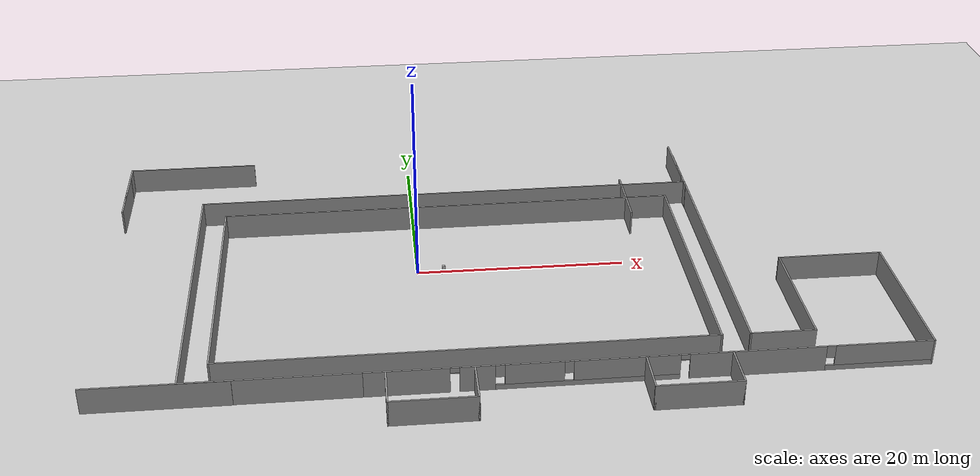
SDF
<sdf version="1.6">
 <world name="default">
  <light name="sun" type="directional">
   <pose>0 0 10 0 -0 0</pose>
   <diffuse>0.8 0.8 0.8 1</diffuse>
   <specular>0.2 0.2 0.2 1</specular>
   <attenuation>
    <range>1000</range>
    <constant>0.9</constant>
    <linear>0.01</linear>
    <quadratic>0.001</quadratic>
   </attenuation>
   <direction>-0.5 0.1 -0.9</direction>
  </light>
  <model name="ground_plane">
   <static>1</static>
   <link name="link">
    <collision name="collision">
     <geometry><plane><normal>0 0 1</normal><size>100 100</size></plane></geometry>
     <surface>
      <contact><collide_bitmask>65535</collide_bitmask></contact>
      <friction><ode><mu>100</mu><mu2>50</mu2></ode></friction>
     </surface>
    </collision>
    <visual name="visual">
     <cast_shadows>0</cast_shadows>
     <geometry><plane><normal>0 0 1</normal><size>100 100</size></plane></geometry>
     <material>
      <script><uri>file://media/materials/scripts/gazebo.material</uri><name>Gazebo/Grey</name></script>
     </material>
    </visual>
   </link>
  </model>
  <gravity>0 0 -9.8</gravity>
  <magnetic_field>6e-06 2.3e-05 -4.2e-05</magnetic_field>
  <atmosphere type="adiabatic"/>
  <physics name="default_physics" default="0" type="ode">
   <max_step_size>0.001</max_step_size>
   <real_time_factor>1</real_time_factor>
   <real_time_update_rate>1000</real_time_update_rate>
  </physics>
  <scene><ambient>0.4 0.4 0.4 1</ambient><background>0.7 0.7 0.7 1</background><shadows>1</shadows></scene>
  <spherical_coordinates>
   <surface_model>EARTH_WGS84</surface_model>
   <latitude_deg>0</latitude_deg>
   <longitude_deg>0</longitude_deg>
   <elevation>0</elevation>
   <heading_deg>0</heading_deg>
  </spherical_coordinates>
  <model name="my_worlds">
   <link name="myworld::myworld::Wall_0">
    <pose>7.725 -15.35 0 0 -0 0</pose>
    <visual name="Wall_0_Visual_6">
     <pose>-2.17588 0 1.5 0 -0 0</pose>
     <geometry><box><size>9.2769 0.15 2</size></box></geometry>
     <material>
      <script><uri>file://media/materials/scripts/gazebo.material</uri><name>Gazebo/Grey</name></script>
      <ambient>1 1 1 1</ambient>
      <shader type="pixel"/>
     </material>
     <meta><layer>0</layer></meta>
    </visual>
    <visual name="Wall_0_Visual_0">
     <pose>-21.2249 0 1.25 0 -0 0</pose>
     <geometry><box><size>7.55013 0.15 2.5</size></box></geometry>
     <material>
      <script><uri>file://media/materials/scripts/gazebo.material</uri><name>Gazebo/Grey</name></script>
      <ambient>1 1 1 1</ambient>
      <shader type="pixel"/>
     </material>
     <meta><layer>0</layer></meta>
    </visual>
    <visual name="Wall_0_Visual_14">
     <pose>2.86257 0 2.25 0 -0 0</pose>
     <geometry><box><size>0.8 0.15 0.5</size></box></geometry>
     <material>
      <script><uri>file://media/materials/scripts/gazebo.material</uri><name>Gazebo/Grey</name></script>
      <ambient>1 1 1 1</ambient>
      <shader type="pixel"/>
     </material>
     <meta><layer>0</layer></meta>
    </visual>
    <visual name="Wall_0_Visual_8">
     <pose>20.5547 0 1.5 0 -0 0</pose>
     <geometry><box><size>8.89059 0.15 2</size></box></geometry>
     <material>
      <script><uri>file://media/materials/scripts/gazebo.material</uri><name>Gazebo/Grey</name></script>
      <ambient>1 1 1 1</ambient>
      <shader type="pixel"/>
     </material>
     <meta><layer>0</layer></meta>
    </visual>
    <visual name="Wall_0_Visual_2">
     <pose>9.28599 0 1.25 0 -0 0</pose>
     <geometry><box><size>12.0468 0.15 2.5</size></box></geometry>
     <material>
      <script><uri>file://media/materials/scripts/gazebo.material</uri><name>Gazebo/Grey</name></script>
      <ambient>1 1 1 1</ambient>
      <shader type="pixel"/>
     </material>
     <meta><layer>0</layer></meta>
    </visual>
    <visual name="Wall_0_Visual_1">
     <pose>-15.1089 0 1.25 0 -0 0</pose>
     <geometry><box><size>3.08192 0.15 2.5</size></box></geometry>
     <material>
      <script><uri>file://media/materials/scripts/gazebo.material</uri><name>Gazebo/Grey</name></script>
      <ambient>1 1 1 1</ambient>
      <shader type="pixel"/>
     </material>
     <meta><layer>0</layer></meta>
    </visual>
    <visual name="Wall_0_Visual_3">
     <pose>-5.55269 0 0.25 0 -0 0</pose>
     <geometry><box><size>16.0305 0.15 0.5</size></box></geometry>
     <material>
      <script><uri>file://media/materials/scripts/gazebo.material</uri><name>Gazebo/Grey</name></script>
      <ambient>1 1 1 1</ambient>
      <shader type="pixel"/>
     </material>
     <meta><layer>0</layer></meta>
    </visual>
    <visual name="Wall_0_Visual_5">
     <pose>-10.1911 0 1.5 0 -0 0</pose>
     <geometry><box><size>5.15362 0.15 2</size></box></geometry>
     <material>
      <script><uri>file://media/materials/scripts/gazebo.material</uri><name>Gazebo/Grey</name></script>
      <ambient>1 1 1 1</ambient>
      <shader type="pixel"/>
     </material>
     <meta><layer>0</layer></meta>
    </visual>
    <visual name="Wall_0_Visual_13">
     <pose>2.86257 0 2.25 0 -0 0</pose>
     <geometry><box><size>0.8 0.15 0.5</size></box></geometry>
     <material>
      <script><uri>file://media/materials/scripts/gazebo.material</uri><name>Gazebo/Grey</name></script>
      <ambient>1 1 1 1</ambient>
      <shader type="pixel"/>
     </material>
     <meta><layer>0</layer></meta>
    </visual>
    <visual name="Wall_0_Visual_4">
     <pose>20.1547 0 0.25 0 -0 0</pose>
     <geometry><box><size>9.69059 0.15 0.5</size></box></geometry>
     <material>
      <script><uri>file://media/materials/scripts/gazebo.material</uri><name>Gazebo/Grey</name></script>
      <ambient>1 1 1 1</ambient>
      <shader type="pixel"/>
     </material>
     <meta><layer>0</layer></meta>
    </visual>
    <visual name="Wall_0_Visual_9">
     <pose>-13.1679 0 1.9 0 -0 0</pose>
     <geometry><box><size>0.8 0.15 1.2</size></box></geometry>
     <material>
      <script><uri>file://media/materials/scripts/gazebo.material</uri><name>Gazebo/Grey</name></script>
      <ambient>1 1 1 1</ambient>
      <shader type="pixel"/>
     </material>
     <meta><layer>0</layer></meta>
    </visual>
    <visual name="Wall_0_Visual_10">
     <pose>15.7094 0 1.9 0 -0 0</pose>
     <geometry><box><size>0.8 0.15 1.2</size></box></geometry>
     <material>
      <script><uri>file://media/materials/scripts/gazebo.material</uri><name>Gazebo/Grey</name></script>
      <ambient>1 1 1 1</ambient>
      <shader type="pixel"/>
     </material>
     <meta><layer>0</layer></meta>
    </visual>
    <visual name="Wall_0_Visual_11">
     <pose>-7.21433 0 1.9 0 -0 0</pose>
     <geometry><box><size>0.8 0.15 1.2</size></box></geometry>
     <material>
      <script><uri>file://media/materials/scripts/gazebo.material</uri><name>Gazebo/Grey</name></script>
      <ambient>1 1 1 1</ambient>
      <shader type="pixel"/>
     </material>
     <meta><layer>0</layer></meta>
    </visual>
    <visual name="Wall_0_Visual_12">
     <pose>-17.0499 0 2.25 0 -0 0</pose>
     <geometry><box><size>0.8 0.15 0.5</size></box></geometry>
     <material>
      <script><uri>file://media/materials/scripts/gazebo.material</uri><name>Gazebo/Grey</name></script>
      <ambient>1 1 1 1</ambient>
      <shader type="pixel"/>
     </material>
     <meta><layer>0</layer></meta>
    </visual>
    <visual name="Wall_0_Visual_7">
     <pose>-2.17588 0 1.5 0 -0 0</pose>
     <geometry><box><size>9.2769 0.15 2</size></box></geometry>
     <material>
      <script><uri>file://media/materials/scripts/gazebo.material</uri><name>Gazebo/Grey</name></script>
      <ambient>1 1 1 1</ambient>
      <shader type="pixel"/>
     </material>
     <meta><layer>0</layer></meta>
    </visual>
    <collision name="Wall_0_Collision_7">
     <pose>-2.17588 0 1.5 0 -0 0</pose>
     <geometry><box><size>9.2769 0.15 2</size></box></geometry>
     <surface>
      <friction>
       <ode><mu>1</mu><mu2>1</mu2><fdir1>0 0 0</fdir1><slip1>0</slip1><slip2>0</slip2></ode>
       <torsional>
        <coefficient>1</coefficient>
        <patch_radius>0</patch_radius>
        <surface_radius>0</surface_radius>
        <use_patch_radius>1</use_patch_radius>
        <ode><slip>0</slip></ode>
       </torsional>
      </friction>
      <bounce><restitution_coefficient>0</restitution_coefficient><threshold>1e+06</threshold></bounce>
      <contact>
       <collide_without_contact>0</collide_without_contact>
       <collide_without_contact_bitmask>1</collide_without_contact_bitmask>
       <collide_bitmask>1</collide_bitmask>
       <ode>
        <soft_cfm>0</soft_cfm>
        <soft_erp>0.2</soft_erp>
        <kp>1e+13</kp>
        <kd>1</kd>
        <max_vel>0.01</max_vel>
        <min_depth>0</min_depth>
       </ode>
       <bullet>
        <split_impulse>1</split_impulse>
        <split_impulse_penetration_threshold>-0.01</split_impulse_penetration_threshold>
        <soft_cfm>0</soft_cfm>
        <soft_erp>0.2</soft_erp>
        <kp>1e+13</kp>
        <kd>1</kd>
       </bullet>
      </contact>
     </surface>
    </collision>
    <collision name="Wall_0_Collision_13">
     <pose>2.86257 0 2.25 0 -0 0</pose>
     <geometry><box><size>0.8 0.15 0.5</size></box></geometry>
     <surface>
      <friction>
       <ode><mu>1</mu><mu2>1</mu2><fdir1>0 0 0</fdir1><slip1>0</slip1><slip2>0</slip2></ode>
       <torsional>
        <coefficient>1</coefficient>
        <patch_radius>0</patch_radius>
        <surface_radius>0</surface_radius>
        <use_patch_radius>1</use_patch_radius>
        <ode><slip>0</slip></ode>
       </torsional>
      </friction>
      <bounce><restitution_coefficient>0</restitution_coefficient><threshold>1e+06</threshold></bounce>
      <contact>
       <collide_without_contact>0</collide_without_contact>
       <collide_without_contact_bitmask>1</collide_without_contact_bitmask>
       <collide_bitmask>1</collide_bitmask>
       <ode>
        <soft_cfm>0</soft_cfm>
        <soft_erp>0.2</soft_erp>
        <kp>1e+13</kp>
        <kd>1</kd>
        <max_vel>0.01</max_vel>
        <min_depth>0</min_depth>
       </ode>
       <bullet>
        <split_impulse>1</split_impulse>
        <split_impulse_penetration_threshold>-0.01</split_impulse_penetration_threshold>
        <soft_cfm>0</soft_cfm>
        <soft_erp>0.2</soft_erp>
        <kp>1e+13</kp>
        <kd>1</kd>
       </bullet>
      </contact>
     </surface>
    </collision>
    <collision name="Wall_0_Collision_1">
     <pose>-15.1089 0 1.25 0 -0 0</pose>
     <geometry><box><size>3.08192 0.15 2.5</size></box></geometry>
     <surface>
      <friction>
       <ode><mu>1</mu><mu2>1</mu2><fdir1>0 0 0</fdir1><slip1>0</slip1><slip2>0</slip2></ode>
       <torsional>
        <coefficient>1</coefficient>
        <patch_radius>0</patch_radius>
        <surface_radius>0</surface_radius>
        <use_patch_radius>1</use_patch_radius>
        <ode><slip>0</slip></ode>
       </torsional>
      </friction>
      <bounce><restitution_coefficient>0</restitution_coefficient><threshold>1e+06</threshold></bounce>
      <contact>
       <collide_without_contact>0</collide_without_contact>
       <collide_without_contact_bitmask>1</collide_without_contact_bitmask>
       <collide_bitmask>1</collide_bitmask>
       <ode>
        <soft_cfm>0</soft_cfm>
        <soft_erp>0.2</soft_erp>
        <kp>1e+13</kp>
        <kd>1</kd>
        <max_vel>0.01</max_vel>
        <min_depth>0</min_depth>
       </ode>
       <bullet>
        <split_impulse>1</split_impulse>
        <split_impulse_penetration_threshold>-0.01</split_impulse_penetration_threshold>
        <soft_cfm>0</soft_cfm>
        <soft_erp>0.2</soft_erp>
        <kp>1e+13</kp>
        <kd>1</kd>
       </bullet>
      </contact>
     </surface>
    </collision>
    <collision name="Wall_0_Collision_11">
     <pose>-7.21433 0 1.9 0 -0 0</pose>
     <geometry><box><size>0.8 0.15 1.2</size></box></geometry>
     <surface>
      <friction>
       <ode><mu>1</mu><mu2>1</mu2><fdir1>0 0 0</fdir1><slip1>0</slip1><slip2>0</slip2></ode>
       <torsional>
        <coefficient>1</coefficient>
        <patch_radius>0</patch_radius>
        <surface_radius>0</surface_radius>
        <use_patch_radius>1</use_patch_radius>
        <ode><slip>0</slip></ode>
       </torsional>
      </friction>
      <bounce><restitution_coefficient>0</restitution_coefficient><threshold>1e+06</threshold></bounce>
      <contact>
       <collide_without_contact>0</collide_without_contact>
       <collide_without_contact_bitmask>1</collide_without_contact_bitmask>
       <collide_bitmask>1</collide_bitmask>
       <ode>
        <soft_cfm>0</soft_cfm>
        <soft_erp>0.2</soft_erp>
        <kp>1e+13</kp>
        <kd>1</kd>
        <max_vel>0.01</max_vel>
        <min_depth>0</min_depth>
       </ode>
       <bullet>
        <split_impulse>1</split_impulse>
        <split_impulse_penetration_threshold>-0.01</split_impulse_penetration_threshold>
        <soft_cfm>0</soft_cfm>
        <soft_erp>0.2</soft_erp>
        <kp>1e+13</kp>
        <kd>1</kd>
       </bullet>
      </contact>
     </surface>
    </collision>
    <collision name="Wall_0_Collision_14">
     <pose>2.86257 0 2.25 0 -0 0</pose>
     <geometry><box><size>0.8 0.15 0.5</size></box></geometry>
     <surface>
      <friction>
       <ode><mu>1</mu><mu2>1</mu2><fdir1>0 0 0</fdir1><slip1>0</slip1><slip2>0</slip2></ode>
       <torsional>
        <coefficient>1</coefficient>
        <patch_radius>0</patch_radius>
        <surface_radius>0</surface_radius>
        <use_patch_radius>1</use_patch_radius>
        <ode><slip>0</slip></ode>
       </torsional>
      </friction>
      <bounce><restitution_coefficient>0</restitution_coefficient><threshold>1e+06</threshold></bounce>
      <contact>
       <collide_without_contact>0</collide_without_contact>
       <collide_without_contact_bitmask>1</collide_without_contact_bitmask>
       <collide_bitmask>1</collide_bitmask>
       <ode>
        <soft_cfm>0</soft_cfm>
        <soft_erp>0.2</soft_erp>
        <kp>1e+13</kp>
        <kd>1</kd>
        <max_vel>0.01</max_vel>
        <min_depth>0</min_depth>
       </ode>
       <bullet>
        <split_impulse>1</split_impulse>
        <split_impulse_penetration_threshold>-0.01</split_impulse_penetration_threshold>
        <soft_cfm>0</soft_cfm>
        <soft_erp>0.2</soft_erp>
        <kp>1e+13</kp>
        <kd>1</kd>
       </bullet>
      </contact>
     </surface>
    </collision>
    <collision name="Wall_0_Collision_3">
     <pose>-5.55269 0 0.25 0 -0 0</pose>
     <geometry><box><size>16.0305 0.15 0.5</size></box></geometry>
     <surface>
      <friction>
       <ode><mu>1</mu><mu2>1</mu2><fdir1>0 0 0</fdir1><slip1>0</slip1><slip2>0</slip2></ode>
       <torsional>
        <coefficient>1</coefficient>
        <patch_radius>0</patch_radius>
        <surface_radius>0</surface_radius>
        <use_patch_radius>1</use_patch_radius>
        <ode><slip>0</slip></ode>
       </torsional>
      </friction>
      <bounce><restitution_coefficient>0</restitution_coefficient><threshold>1e+06</threshold></bounce>
      <contact>
       <collide_without_contact>0</collide_without_contact>
       <collide_without_contact_bitmask>1</collide_without_contact_bitmask>
       <collide_bitmask>1</collide_bitmask>
       <ode>
        <soft_cfm>0</soft_cfm>
        <soft_erp>0.2</soft_erp>
        <kp>1e+13</kp>
        <kd>1</kd>
        <max_vel>0.01</max_vel>
        <min_depth>0</min_depth>
       </ode>
       <bullet>
        <split_impulse>1</split_impulse>
        <split_impulse_penetration_threshold>-0.01</split_impulse_penetration_threshold>
        <soft_cfm>0</soft_cfm>
        <soft_erp>0.2</soft_erp>
        <kp>1e+13</kp>
        <kd>1</kd>
       </bullet>
      </contact>
     </surface>
    </collision>
    <collision name="Wall_0_Collision_5">
     <pose>-10.1911 0 1.5 0 -0 0</pose>
     <geometry><box><size>5.15362 0.15 2</size></box></geometry>
     <surface>
      <friction>
       <ode><mu>1</mu><mu2>1</mu2><fdir1>0 0 0</fdir1><slip1>0</slip1><slip2>0</slip2></ode>
       <torsional>
        <coefficient>1</coefficient>
        <patch_radius>0</patch_radius>
        <surface_radius>0</surface_radius>
        <use_patch_radius>1</use_patch_radius>
        <ode><slip>0</slip></ode>
       </torsional>
      </friction>
      <bounce><restitution_coefficient>0</restitution_coefficient><threshold>1e+06</threshold></bounce>
      <contact>
       <collide_without_contact>0</collide_without_contact>
       <collide_without_contact_bitmask>1</collide_without_contact_bitmask>
       <collide_bitmask>1</collide_bitmask>
       <ode>
        <soft_cfm>0</soft_cfm>
        <soft_erp>0.2</soft_erp>
        <kp>1e+13</kp>
        <kd>1</kd>
        <max_vel>0.01</max_vel>
        <min_depth>0</min_depth>
       </ode>
       <bullet>
        <split_impulse>1</split_impulse>
        <split_impulse_penetration_threshold>-0.01</split_impulse_penetration_threshold>
        <soft_cfm>0</soft_cfm>
        <soft_erp>0.2</soft_erp>
        <kp>1e+13</kp>
        <kd>1</kd>
       </bullet>
      </contact>
     </surface>
    </collision>
    <collision name="Wall_0_Collision_2">
     <pose>9.28599 0 1.25 0 -0 0</pose>
     <geometry><box><size>12.0468 0.15 2.5</size></box></geometry>
     <surface>
      <friction>
       <ode><mu>1</mu><mu2>1</mu2><fdir1>0 0 0</fdir1><slip1>0</slip1><slip2>0</slip2></ode>
       <torsional>
        <coefficient>1</coefficient>
        <patch_radius>0</patch_radius>
        <surface_radius>0</surface_radius>
        <use_patch_radius>1</use_patch_radius>
        <ode><slip>0</slip></ode>
       </torsional>
      </friction>
      <bounce><restitution_coefficient>0</restitution_coefficient><threshold>1e+06</threshold></bounce>
      <contact>
       <collide_without_contact>0</collide_without_contact>
       <collide_without_contact_bitmask>1</collide_without_contact_bitmask>
       <collide_bitmask>1</collide_bitmask>
       <ode>
        <soft_cfm>0</soft_cfm>
        <soft_erp>0.2</soft_erp>
        <kp>1e+13</kp>
        <kd>1</kd>
        <max_vel>0.01</max_vel>
        <min_depth>0</min_depth>
       </ode>
       <bullet>
        <split_impulse>1</split_impulse>
        <split_impulse_penetration_threshold>-0.01</split_impulse_penetration_threshold>
        <soft_cfm>0</soft_cfm>
        <soft_erp>0.2</soft_erp>
        <kp>1e+13</kp>
        <kd>1</kd>
       </bullet>
      </contact>
     </surface>
    </collision>
    <collision name="Wall_0_Collision_6">
     <pose>-2.17588 0 1.5 0 -0 0</pose>
     <geometry><box><size>9.2769 0.15 2</size></box></geometry>
     <surface>
      <friction>
       <ode><mu>1</mu><mu2>1</mu2><fdir1>0 0 0</fdir1><slip1>0</slip1><slip2>0</slip2></ode>
       <torsional>
        <coefficient>1</coefficient>
        <patch_radius>0</patch_radius>
        <surface_radius>0</surface_radius>
        <use_patch_radius>1</use_patch_radius>
        <ode><slip>0</slip></ode>
       </torsional>
      </friction>
      <bounce><restitution_coefficient>0</restitution_coefficient><threshold>1e+06</threshold></bounce>
      <contact>
       <collide_without_contact>0</collide_without_contact>
       <collide_without_contact_bitmask>1</collide_without_contact_bitmask>
       <collide_bitmask>1</collide_bitmask>
       <ode>
        <soft_cfm>0</soft_cfm>
        <soft_erp>0.2</soft_erp>
        <kp>1e+13</kp>
        <kd>1</kd>
        <max_vel>0.01</max_vel>
        <min_depth>0</min_depth>
       </ode>
       <bullet>
        <split_impulse>1</split_impulse>
        <split_impulse_penetration_threshold>-0.01</split_impulse_penetration_threshold>
        <soft_cfm>0</soft_cfm>
        <soft_erp>0.2</soft_erp>
        <kp>1e+13</kp>
        <kd>1</kd>
       </bullet>
      </contact>
     </surface>
    </collision>
    <collision name="Wall_0_Collision_12">
     <pose>-17.0499 0 2.25 0 -0 0</pose>
     <geometry><box><size>0.8 0.15 0.5</size></box></geometry>
     <surface>
      <friction>
       <ode><mu>1</mu><mu2>1</mu2><fdir1>0 0 0</fdir1><slip1>0</slip1><slip2>0</slip2></ode>
       <torsional>
        <coefficient>1</coefficient>
        <patch_radius>0</patch_radius>
        <surface_radius>0</surface_radius>
        <use_patch_radius>1</use_patch_radius>
        <ode><slip>0</slip></ode>
       </torsional>
      </friction>
      <bounce><restitution_coefficient>0</restitution_coefficient><threshold>1e+06</threshold></bounce>
      <contact>
       <collide_without_contact>0</collide_without_contact>
       <collide_without_contact_bitmask>1</collide_without_contact_bitmask>
       <collide_bitmask>1</collide_bitmask>
       <ode>
        <soft_cfm>0</soft_cfm>
        <soft_erp>0.2</soft_erp>
        <kp>1e+13</kp>
        <kd>1</kd>
        <max_vel>0.01</max_vel>
        <min_depth>0</min_depth>
       </ode>
       <bullet>
        <split_impulse>1</split_impulse>
        <split_impulse_penetration_threshold>-0.01</split_impulse_penetration_threshold>
        <soft_cfm>0</soft_cfm>
        <soft_erp>0.2</soft_erp>
        <kp>1e+13</kp>
        <kd>1</kd>
       </bullet>
      </contact>
     </surface>
    </collision>
    <collision name="Wall_0_Collision_0">
     <pose>-21.2249 0 1.25 0 -0 0</pose>
     <geometry><box><size>7.55013 0.15 2.5</size></box></geometry>
     <surface>
      <friction>
       <ode><mu>1</mu><mu2>1</mu2><fdir1>0 0 0</fdir1><slip1>0</slip1><slip2>0</slip2></ode>
       <torsional>
        <coefficient>1</coefficient>
        <patch_radius>0</patch_radius>
        <surface_radius>0</surface_radius>
        <use_patch_radius>1</use_patch_radius>
        <ode><slip>0</slip></ode>
       </torsional>
      </friction>
      <bounce><restitution_coefficient>0</restitution_coefficient><threshold>1e+06</threshold></bounce>
      <contact>
       <collide_without_contact>0</collide_without_contact>
       <collide_without_contact_bitmask>1</collide_without_contact_bitmask>
       <collide_bitmask>1</collide_bitmask>
       <ode>
        <soft_cfm>0</soft_cfm>
        <soft_erp>0.2</soft_erp>
        <kp>1e+13</kp>
        <kd>1</kd>
        <max_vel>0.01</max_vel>
        <min_depth>0</min_depth>
       </ode>
       <bullet>
        <split_impulse>1</split_impulse>
        <split_impulse_penetration_threshold>-0.01</split_impulse_penetration_threshold>
        <soft_cfm>0</soft_cfm>
        <soft_erp>0.2</soft_erp>
        <kp>1e+13</kp>
        <kd>1</kd>
       </bullet>
      </contact>
     </surface>
    </collision>
    <collision name="Wall_0_Collision_8">
     <pose>20.5547 0 1.5 0 -0 0</pose>
     <geometry><box><size>8.89059 0.15 2</size></box></geometry>
     <surface>
      <friction>
       <ode><mu>1</mu><mu2>1</mu2><fdir1>0 0 0</fdir1><slip1>0</slip1><slip2>0</slip2></ode>
       <torsional>
        <coefficient>1</coefficient>
        <patch_radius>0</patch_radius>
        <surface_radius>0</surface_radius>
        <use_patch_radius>1</use_patch_radius>
        <ode><slip>0</slip></ode>
       </torsional>
      </friction>
      <bounce><restitution_coefficient>0</restitution_coefficient><threshold>1e+06</threshold></bounce>
      <contact>
       <collide_without_contact>0</collide_without_contact>
       <collide_without_contact_bitmask>1</collide_without_contact_bitmask>
       <collide_bitmask>1</collide_bitmask>
       <ode>
        <soft_cfm>0</soft_cfm>
        <soft_erp>0.2</soft_erp>
        <kp>1e+13</kp>
        <kd>1</kd>
        <max_vel>0.01</max_vel>
        <min_depth>0</min_depth>
       </ode>
       <bullet>
        <split_impulse>1</split_impulse>
        <split_impulse_penetration_threshold>-0.01</split_impulse_penetration_threshold>
        <soft_cfm>0</soft_cfm>
        <soft_erp>0.2</soft_erp>
        <kp>1e+13</kp>
        <kd>1</kd>
       </bullet>
      </contact>
     </surface>
    </collision>
    <collision name="Wall_0_Collision_4">
     <pose>20.1547 0 0.25 0 -0 0</pose>
     <geometry><box><size>9.69059 0.15 0.5</size></box></geometry>
     <surface>
      <friction>
       <ode><mu>1</mu><mu2>1</mu2><fdir1>0 0 0</fdir1><slip1>0</slip1><slip2>0</slip2></ode>
       <torsional>
        <coefficient>1</coefficient>
        <patch_radius>0</patch_radius>
        <surface_radius>0</surface_radius>
        <use_patch_radius>1</use_patch_radius>
        <ode><slip>0</slip></ode>
       </torsional>
      </friction>
      <bounce><restitution_coefficient>0</restitution_coefficient><threshold>1e+06</threshold></bounce>
      <contact>
       <collide_without_contact>0</collide_without_contact>
       <collide_without_contact_bitmask>1</collide_without_contact_bitmask>
       <collide_bitmask>1</collide_bitmask>
       <ode>
        <soft_cfm>0</soft_cfm>
        <soft_erp>0.2</soft_erp>
        <kp>1e+13</kp>
        <kd>1</kd>
        <max_vel>0.01</max_vel>
        <min_depth>0</min_depth>
       </ode>
       <bullet>
        <split_impulse>1</split_impulse>
        <split_impulse_penetration_threshold>-0.01</split_impulse_penetration_threshold>
        <soft_cfm>0</soft_cfm>
        <soft_erp>0.2</soft_erp>
        <kp>1e+13</kp>
        <kd>1</kd>
       </bullet>
      </contact>
     </surface>
    </collision>
    <collision name="Wall_0_Collision_10">
     <pose>15.7094 0 1.9 0 -0 0</pose>
     <geometry><box><size>0.8 0.15 1.2</size></box></geometry>
     <surface>
      <friction>
       <ode><mu>1</mu><mu2>1</mu2><fdir1>0 0 0</fdir1><slip1>0</slip1><slip2>0</slip2></ode>
       <torsional>
        <coefficient>1</coefficient>
        <patch_radius>0</patch_radius>
        <surface_radius>0</surface_radius>
        <use_patch_radius>1</use_patch_radius>
        <ode><slip>0</slip></ode>
       </torsional>
      </friction>
      <bounce><restitution_coefficient>0</restitution_coefficient><threshold>1e+06</threshold></bounce>
      <contact>
       <collide_without_contact>0</collide_without_contact>
       <collide_without_contact_bitmask>1</collide_without_contact_bitmask>
       <collide_bitmask>1</collide_bitmask>
       <ode>
        <soft_cfm>0</soft_cfm>
        <soft_erp>0.2</soft_erp>
        <kp>1e+13</kp>
        <kd>1</kd>
        <max_vel>0.01</max_vel>
        <min_depth>0</min_depth>
       </ode>
       <bullet>
        <split_impulse>1</split_impulse>
        <split_impulse_penetration_threshold>-0.01</split_impulse_penetration_threshold>
        <soft_cfm>0</soft_cfm>
        <soft_erp>0.2</soft_erp>
        <kp>1e+13</kp>
        <kd>1</kd>
       </bullet>
      </contact>
     </surface>
    </collision>
    <collision name="Wall_0_Collision_9">
     <pose>-13.1679 0 1.9 0 -0 0</pose>
     <geometry><box><size>0.8 0.15 1.2</size></box></geometry>
     <surface>
      <friction>
       <ode><mu>1</mu><mu2>1</mu2><fdir1>0 0 0</fdir1><slip1>0</slip1><slip2>0</slip2></ode>
       <torsional>
        <coefficient>1</coefficient>
        <patch_radius>0</patch_radius>
        <surface_radius>0</surface_radius>
        <use_patch_radius>1</use_patch_radius>
        <ode><slip>0</slip></ode>
       </torsional>
      </friction>
      <bounce><restitution_coefficient>0</restitution_coefficient><threshold>1e+06</threshold></bounce>
      <contact>
       <collide_without_contact>0</collide_without_contact>
       <collide_without_contact_bitmask>1</collide_without_contact_bitmask>
       <collide_bitmask>1</collide_bitmask>
       <ode>
        <soft_cfm>0</soft_cfm>
        <soft_erp>0.2</soft_erp>
        <kp>1e+13</kp>
        <kd>1</kd>
        <max_vel>0.01</max_vel>
        <min_depth>0</min_depth>
       </ode>
       <bullet>
        <split_impulse>1</split_impulse>
        <split_impulse_penetration_threshold>-0.01</split_impulse_penetration_threshold>
        <soft_cfm>0</soft_cfm>
        <soft_erp>0.2</soft_erp>
        <kp>1e+13</kp>
        <kd>1</kd>
       </bullet>
      </contact>
     </surface>
    </collision>
   </link>
   <link name="myworld::myworld::Wall_11">
    <pose>19.875 -12.75 0 0 -0 3.14159</pose>
    <visual name="Wall_11_Visual">
     <pose>0 0 1.25 0 -0 0</pose>
     <geometry><box><size>6 0.15 2.5</size></box></geometry>
     <material>
      <script><uri>file://media/materials/scripts/gazebo.material</uri><name>Gazebo/Grey</name></script>
      <ambient>1 1 1 1</ambient>
      <shader type="pixel"/>
     </material>
     <meta><layer>0</layer></meta>
    </visual>
    <collision name="Wall_11_Collision">
     <pose>0 0 1.25 0 -0 0</pose>
     <geometry><box><size>6 0.15 2.5</size></box></geometry>
     <surface>
      <friction>
       <ode><mu>1</mu><mu2>1</mu2><fdir1>0 0 0</fdir1><slip1>0</slip1><slip2>0</slip2></ode>
       <torsional>
        <coefficient>1</coefficient>
        <patch_radius>0</patch_radius>
        <surface_radius>0</surface_radius>
        <use_patch_radius>1</use_patch_radius>
        <ode><slip>0</slip></ode>
       </torsional>
      </friction>
      <bounce><restitution_coefficient>0</restitution_coefficient><threshold>1e+06</threshold></bounce>
      <contact>
       <collide_without_contact>0</collide_without_contact>
       <collide_without_contact_bitmask>1</collide_without_contact_bitmask>
       <collide_bitmask>1</collide_bitmask>
       <ode>
        <soft_cfm>0</soft_cfm>
        <soft_erp>0.2</soft_erp>
        <kp>1e+13</kp>
        <kd>1</kd>
        <max_vel>0.01</max_vel>
        <min_depth>0</min_depth>
       </ode>
       <bullet>
        <split_impulse>1</split_impulse>
        <split_impulse_penetration_threshold>-0.01</split_impulse_penetration_threshold>
        <soft_cfm>0</soft_cfm>
        <soft_erp>0.2</soft_erp>
        <kp>1e+13</kp>
        <kd>1</kd>
       </bullet>
      </contact>
     </surface>
    </collision>
   </link>
   <link name="myworld::myworld::Wall_12">
    <pose>16.95 1.3 0 0 -0 1.5708</pose>
    <visual name="Wall_12_Visual">
     <pose>0 0 1.25 0 -0 0</pose>
     <geometry><box><size>28.25 0.15 2.5</size></box></geometry>
     <material>
      <script><uri>file://media/materials/scripts/gazebo.material</uri><name>Gazebo/Grey</name></script>
      <ambient>1 1 1 1</ambient>
      <shader type="pixel"/>
     </material>
     <meta><layer>0</layer></meta>
    </visual>
    <collision name="Wall_12_Collision">
     <pose>0 0 1.25 0 -0 0</pose>
     <geometry><box><size>28.25 0.15 2.5</size></box></geometry>
     <surface>
      <friction>
       <ode><mu>1</mu><mu2>1</mu2><fdir1>0 0 0</fdir1><slip1>0</slip1><slip2>0</slip2></ode>
       <torsional>
        <coefficient>1</coefficient>
        <patch_radius>0</patch_radius>
        <surface_radius>0</surface_radius>
        <use_patch_radius>1</use_patch_radius>
        <ode><slip>0</slip></ode>
       </torsional>
      </friction>
      <bounce><restitution_coefficient>0</restitution_coefficient><threshold>1e+06</threshold></bounce>
      <contact>
       <collide_without_contact>0</collide_without_contact>
       <collide_without_contact_bitmask>1</collide_without_contact_bitmask>
       <collide_bitmask>1</collide_bitmask>
       <ode>
        <soft_cfm>0</soft_cfm>
        <soft_erp>0.2</soft_erp>
        <kp>1e+13</kp>
        <kd>1</kd>
        <max_vel>0.01</max_vel>
        <min_depth>0</min_depth>
       </ode>
       <bullet>
        <split_impulse>1</split_impulse>
        <split_impulse_penetration_threshold>-0.01</split_impulse_penetration_threshold>
        <soft_cfm>0</soft_cfm>
        <soft_erp>0.2</soft_erp>
        <kp>1e+13</kp>
        <kd>1</kd>
       </bullet>
      </contact>
     </surface>
    </collision>
   </link>
   <link name="Wall_13">
    <pose>-7.85 15.35 0 0 -0 3.14159</pose>
    <visual name="Wall_13_Visual">
     <pose>0 0 1.25 0 -0 0</pose>
     <geometry><box><size>49.75 0.15 2.5</size></box></geometry>
     <material>
      <script><uri>file://media/materials/scripts/gazebo.material</uri><name>Gazebo/Grey</name></script>
      <ambient>1 1 1 1</ambient>
      <shader type="pixel"/>
     </material>
     <meta><layer>0</layer></meta>
    </visual>
    <collision name="Wall_13_Collision">
     <pose>0 0 1.25 0 -0 0</pose>
     <geometry><box><size>49.75 0.15 2.5</size></box></geometry>
     <surface>
      <friction>
       <ode><mu>1</mu><mu2>1</mu2><fdir1>0 0 0</fdir1><slip1>0</slip1><slip2>0</slip2></ode>
       <torsional>
        <coefficient>1</coefficient>
        <patch_radius>0</patch_radius>
        <surface_radius>0</surface_radius>
        <use_patch_radius>1</use_patch_radius>
        <ode><slip>0</slip></ode>
       </torsional>
      </friction>
      <bounce><restitution_coefficient>0</restitution_coefficient><threshold>1e+06</threshold></bounce>
      <contact>
       <collide_without_contact>0</collide_without_contact>
       <collide_without_contact_bitmask>1</collide_without_contact_bitmask>
       <collide_bitmask>1</collide_bitmask>
       <ode>
        <soft_cfm>0</soft_cfm>
        <soft_erp>0.2</soft_erp>
        <kp>1e+13</kp>
        <kd>1</kd>
        <max_vel>0.01</max_vel>
        <min_depth>0</min_depth>
       </ode>
       <bullet>
        <split_impulse>1</split_impulse>
        <split_impulse_penetration_threshold>-0.01</split_impulse_penetration_threshold>
        <soft_cfm>0</soft_cfm>
        <soft_erp>0.2</soft_erp>
        <kp>1e+13</kp>
        <kd>1</kd>
       </bullet>
      </contact>
     </surface>
    </collision>
   </link>
   <link name="Wall_14">
    <pose>-32.65 0.024999 0 0 0 -1.5708</pose>
    <visual name="Wall_14_Visual">
     <pose>0 0 1.25 0 -0 0</pose>
     <geometry><box><size>30.8 0.15 2.5</size></box></geometry>
     <material>
      <script><uri>file://media/materials/scripts/gazebo.material</uri><name>Gazebo/Grey</name></script>
      <ambient>1 1 1 1</ambient>
      <shader type="pixel"/>
     </material>
     <meta><layer>0</layer></meta>
    </visual>
    <collision name="Wall_14_Collision">
     <pose>0 0 1.25 0 -0 0</pose>
     <geometry><box><size>30.8 0.15 2.5</size></box></geometry>
     <surface>
      <friction>
       <ode><mu>1</mu><mu2>1</mu2><fdir1>0 0 0</fdir1><slip1>0</slip1><slip2>0</slip2></ode>
       <torsional>
        <coefficient>1</coefficient>
        <patch_radius>0</patch_radius>
        <surface_radius>0</surface_radius>
        <use_patch_radius>1</use_patch_radius>
        <ode><slip>0</slip></ode>
       </torsional>
      </friction>
      <bounce><restitution_coefficient>0</restitution_coefficient><threshold>1e+06</threshold></bounce>
      <contact>
       <collide_without_contact>0</collide_without_contact>
       <collide_without_contact_bitmask>1</collide_without_contact_bitmask>
       <collide_bitmask>1</collide_bitmask>
       <ode>
        <soft_cfm>0</soft_cfm>
        <soft_erp>0.2</soft_erp>
        <kp>1e+13</kp>
        <kd>1</kd>
        <max_vel>0.01</max_vel>
        <min_depth>0</min_depth>
       </ode>
       <bullet>
        <split_impulse>1</split_impulse>
        <split_impulse_penetration_threshold>-0.01</split_impulse_penetration_threshold>
        <soft_cfm>0</soft_cfm>
        <soft_erp>0.2</soft_erp>
        <kp>1e+13</kp>
        <kd>1</kd>
       </bullet>
      </contact>
     </surface>
    </collision>
   </link>
   <link name="myworld::myworld::Wall_16">
    <pose>-24.875 -15.35 0 0 -0 3.14159</pose>
    <visual name="Wall_16_Visual">
     <pose>0 0 1.25 0 -0 0</pose>
     <geometry><box><size>15.5 0.15 2.5</size></box></geometry>
     <material>
      <script><uri>file://media/materials/scripts/gazebo.material</uri><name>Gazebo/Grey</name></script>
      <ambient>1 1 1 1</ambient>
      <shader type="pixel"/>
     </material>
     <meta><layer>0</layer></meta>
    </visual>
    <collision name="Wall_16_Collision">
     <pose>0 0 1.25 0 -0 0</pose>
     <geometry><box><size>15.5 0.15 2.5</size></box></geometry>
     <surface>
      <friction>
       <ode><mu>1</mu><mu2>1</mu2><fdir1>0 0 0</fdir1><slip1>0</slip1><slip2>0</slip2></ode>
       <torsional>
        <coefficient>1</coefficient>
        <patch_radius>0</patch_radius>
        <surface_radius>0</surface_radius>
        <use_patch_radius>1</use_patch_radius>
        <ode><slip>0</slip></ode>
       </torsional>
      </friction>
      <bounce><restitution_coefficient>0</restitution_coefficient><threshold>1e+06</threshold></bounce>
      <contact>
       <collide_without_contact>0</collide_without_contact>
       <collide_without_contact_bitmask>1</collide_without_contact_bitmask>
       <collide_bitmask>1</collide_bitmask>
       <ode>
        <soft_cfm>0</soft_cfm>
        <soft_erp>0.2</soft_erp>
        <kp>1e+13</kp>
        <kd>1</kd>
        <max_vel>0.01</max_vel>
        <min_depth>0</min_depth>
       </ode>
       <bullet>
        <split_impulse>1</split_impulse>
        <split_impulse_penetration_threshold>-0.01</split_impulse_penetration_threshold>
        <soft_cfm>0</soft_cfm>
        <soft_erp>0.2</soft_erp>
        <kp>1e+13</kp>
        <kd>1</kd>
       </bullet>
      </contact>
     </surface>
    </collision>
   </link>
   <link name="myworld::myworld::Wall_2">
    <pose>32.65 -7.925 0 0 -0 1.5708</pose>
    <visual name="Wall_2_Visual">
     <pose>0 0 1.25 0 -0 0</pose>
     <geometry><box><size>15 0.15 2.5</size></box></geometry>
     <material>
      <script><uri>file://media/materials/scripts/gazebo.material</uri><name>Gazebo/Grey</name></script>
      <ambient>1 1 1 1</ambient>
      <shader type="pixel"/>
     </material>
     <meta><layer>0</layer></meta>
    </visual>
    <collision name="Wall_2_Collision">
     <pose>0 0 1.25 0 -0 0</pose>
     <geometry><box><size>15 0.15 2.5</size></box></geometry>
     <surface>
      <friction>
       <ode><mu>1</mu><mu2>1</mu2><fdir1>0 0 0</fdir1><slip1>0</slip1><slip2>0</slip2></ode>
       <torsional>
        <coefficient>1</coefficient>
        <patch_radius>0</patch_radius>
        <surface_radius>0</surface_radius>
        <use_patch_radius>1</use_patch_radius>
        <ode><slip>0</slip></ode>
       </torsional>
      </friction>
      <bounce><restitution_coefficient>0</restitution_coefficient><threshold>1e+06</threshold></bounce>
      <contact>
       <collide_without_contact>0</collide_without_contact>
       <collide_without_contact_bitmask>1</collide_without_contact_bitmask>
       <collide_bitmask>1</collide_bitmask>
       <ode>
        <soft_cfm>0</soft_cfm>
        <soft_erp>0.2</soft_erp>
        <kp>1e+13</kp>
        <kd>1</kd>
        <max_vel>0.01</max_vel>
        <min_depth>0</min_depth>
       </ode>
       <bullet>
        <split_impulse>1</split_impulse>
        <split_impulse_penetration_threshold>-0.01</split_impulse_penetration_threshold>
        <soft_cfm>0</soft_cfm>
        <soft_erp>0.2</soft_erp>
        <kp>1e+13</kp>
        <kd>1</kd>
       </bullet>
      </contact>
     </surface>
    </collision>
   </link>
   <link name="Wall_20">
    <pose>14.3513 -0.043041 0 0 -0 1.5708</pose>
    <visual name="Wall_20_Visual">
     <pose>0 0 1.25 0 -0 0</pose>
     <geometry><box><size>25.5 0.15 2.5</size></box></geometry>
     <material>
      <script><uri>file://media/materials/scripts/gazebo.material</uri><name>Gazebo/Grey</name></script>
      <ambient>1 1 1 1</ambient>
      <shader type="pixel"/>
     </material>
     <meta><layer>0</layer></meta>
    </visual>
    <collision name="Wall_20_Collision">
     <pose>0 0 1.25 0 -0 0</pose>
     <geometry><box><size>25.5 0.15 2.5</size></box></geometry>
     <surface>
      <friction>
       <ode><mu>1</mu><mu2>1</mu2><fdir1>0 0 0</fdir1><slip1>0</slip1><slip2>0</slip2></ode>
       <torsional>
        <coefficient>1</coefficient>
        <patch_radius>0</patch_radius>
        <surface_radius>0</surface_radius>
        <use_patch_radius>1</use_patch_radius>
        <ode><slip>0</slip></ode>
       </torsional>
      </friction>
      <bounce><restitution_coefficient>0</restitution_coefficient><threshold>1e+06</threshold></bounce>
      <contact>
       <collide_without_contact>0</collide_without_contact>
       <collide_without_contact_bitmask>1</collide_without_contact_bitmask>
       <collide_bitmask>1</collide_bitmask>
       <ode>
        <soft_cfm>0</soft_cfm>
        <soft_erp>0.2</soft_erp>
        <kp>1e+13</kp>
        <kd>1</kd>
        <max_vel>0.01</max_vel>
        <min_depth>0</min_depth>
       </ode>
       <bullet>
        <split_impulse>1</split_impulse>
        <split_impulse_penetration_threshold>-0.01</split_impulse_penetration_threshold>
        <soft_cfm>0</soft_cfm>
        <soft_erp>0.2</soft_erp>
        <kp>1e+13</kp>
        <kd>1</kd>
       </bullet>
      </contact>
     </surface>
    </collision>
   </link>
   <link name="Wall_29">
    <pose>-7.92367 12.632 0 0 -0 3.14159</pose>
    <visual name="Wall_29_Visual">
     <pose>0 0 1.25 0 -0 0</pose>
     <geometry><box><size>44.7 0.15 2.5</size></box></geometry>
     <material>
      <script><uri>file://media/materials/scripts/gazebo.material</uri><name>Gazebo/Grey</name></script>
      <ambient>1 1 1 1</ambient>
      <shader type="pixel"/>
     </material>
     <meta><layer>0</layer></meta>
    </visual>
    <collision name="Wall_29_Collision">
     <pose>0 0 1.25 0 -0 0</pose>
     <geometry><box><size>44.7 0.15 2.5</size></box></geometry>
     <surface>
      <friction>
       <ode><mu>1</mu><mu2>1</mu2><fdir1>0 0 0</fdir1><slip1>0</slip1><slip2>0</slip2></ode>
       <torsional>
        <coefficient>1</coefficient>
        <patch_radius>0</patch_radius>
        <surface_radius>0</surface_radius>
        <use_patch_radius>1</use_patch_radius>
        <ode><slip>0</slip></ode>
       </torsional>
      </friction>
      <bounce><restitution_coefficient>0</restitution_coefficient><threshold>1e+06</threshold></bounce>
      <contact>
       <collide_without_contact>0</collide_without_contact>
       <collide_without_contact_bitmask>1</collide_without_contact_bitmask>
       <collide_bitmask>1</collide_bitmask>
       <ode>
        <soft_cfm>0</soft_cfm>
        <soft_erp>0.2</soft_erp>
        <kp>1e+13</kp>
        <kd>1</kd>
        <max_vel>0.01</max_vel>
        <min_depth>0</min_depth>
       </ode>
       <bullet>
        <split_impulse>1</split_impulse>
        <split_impulse_penetration_threshold>-0.01</split_impulse_penetration_threshold>
        <soft_cfm>0</soft_cfm>
        <soft_erp>0.2</soft_erp>
        <kp>1e+13</kp>
        <kd>1</kd>
       </bullet>
      </contact>
     </surface>
    </collision>
   </link>
   <link name="Wall_33">
    <pose>-30.1987 -0.043041 0 0 0 -1.5708</pose>
    <visual name="Wall_33_Visual">
     <pose>0 0 1.25 0 -0 0</pose>
     <geometry><box><size>25.5 0.15 2.5</size></box></geometry>
     <material>
      <script><uri>file://media/materials/scripts/gazebo.material</uri><name>Gazebo/Grey</name></script>
      <ambient>1 1 1 1</ambient>
      <shader type="pixel"/>
     </material>
     <meta><layer>0</layer></meta>
    </visual>
    <collision name="Wall_33_Collision">
     <pose>0 0 1.25 0 -0 0</pose>
     <geometry><box><size>25.5 0.15 2.5</size></box></geometry>
     <surface>
      <friction>
       <ode><mu>1</mu><mu2>1</mu2><fdir1>0 0 0</fdir1><slip1>0</slip1><slip2>0</slip2></ode>
       <torsional>
        <coefficient>1</coefficient>
        <patch_radius>0</patch_radius>
        <surface_radius>0</surface_radius>
        <use_patch_radius>1</use_patch_radius>
        <ode><slip>0</slip></ode>
       </torsional>
      </friction>
      <bounce><restitution_coefficient>0</restitution_coefficient><threshold>1e+06</threshold></bounce>
      <contact>
       <collide_without_contact>0</collide_without_contact>
       <collide_without_contact_bitmask>1</collide_without_contact_bitmask>
       <collide_bitmask>1</collide_bitmask>
       <ode>
        <soft_cfm>0</soft_cfm>
        <soft_erp>0.2</soft_erp>
        <kp>1e+13</kp>
        <kd>1</kd>
        <max_vel>0.01</max_vel>
        <min_depth>0</min_depth>
       </ode>
       <bullet>
        <split_impulse>1</split_impulse>
        <split_impulse_penetration_threshold>-0.01</split_impulse_penetration_threshold>
        <soft_cfm>0</soft_cfm>
        <soft_erp>0.2</soft_erp>
        <kp>1e+13</kp>
        <kd>1</kd>
       </bullet>
      </contact>
     </surface>
    </collision>
   </link>
   <link name="Wall_34">
    <pose>-7.89867 -12.718 0 0 -0 0</pose>
    <visual name="Wall_34_Visual">
     <pose>0 0 1.25 0 -0 0</pose>
     <geometry><box><size>44.75 0.15 2.5</size></box></geometry>
     <material>
      <script><uri>file://media/materials/scripts/gazebo.material</uri><name>Gazebo/Grey</name></script>
      <ambient>1 1 1 1</ambient>
      <shader type="pixel"/>
     </material>
     <meta><layer>0</layer></meta>
    </visual>
    <collision name="Wall_34_Collision">
     <pose>0 0 1.25 0 -0 0</pose>
     <geometry><box><size>44.75 0.15 2.5</size></box></geometry>
     <surface>
      <friction>
       <ode><mu>1</mu><mu2>1</mu2><fdir1>0 0 0</fdir1><slip1>0</slip1><slip2>0</slip2></ode>
       <torsional>
        <coefficient>1</coefficient>
        <patch_radius>0</patch_radius>
        <surface_radius>0</surface_radius>
        <use_patch_radius>1</use_patch_radius>
        <ode><slip>0</slip></ode>
       </torsional>
      </friction>
      <bounce><restitution_coefficient>0</restitution_coefficient><threshold>1e+06</threshold></bounce>
      <contact>
       <collide_without_contact>0</collide_without_contact>
       <collide_without_contact_bitmask>1</collide_without_contact_bitmask>
       <collide_bitmask>1</collide_bitmask>
       <ode>
        <soft_cfm>0</soft_cfm>
        <soft_erp>0.2</soft_erp>
        <kp>1e+13</kp>
        <kd>1</kd>
        <max_vel>0.01</max_vel>
        <min_depth>0</min_depth>
       </ode>
       <bullet>
        <split_impulse>1</split_impulse>
        <split_impulse_penetration_threshold>-0.01</split_impulse_penetration_threshold>
        <soft_cfm>0</soft_cfm>
        <soft_erp>0.2</soft_erp>
        <kp>1e+13</kp>
        <kd>1</kd>
       </bullet>
      </contact>
     </surface>
    </collision>
   </link>
   <link name="myworld::myworld::Wall_4">
    <pose>27.725 -0.500001 0 0 -0 3.14159</pose>
    <visual name="Wall_4_Visual">
     <pose>0 0 1.25 0 -0 0</pose>
     <geometry><box><size>10 0.15 2.5</size></box></geometry>
     <material>
      <script><uri>file://media/materials/scripts/gazebo.material</uri><name>Gazebo/Grey</name></script>
      <ambient>1 1 1 1</ambient>
      <shader type="pixel"/>
     </material>
     <meta><layer>0</layer></meta>
    </visual>
    <collision name="Wall_4_Collision">
     <pose>0 0 1.25 0 -0 0</pose>
     <geometry><box><size>10 0.15 2.5</size></box></geometry>
     <surface>
      <friction>
       <ode><mu>1</mu><mu2>1</mu2><fdir1>0 0 0</fdir1><slip1>0</slip1><slip2>0</slip2></ode>
       <torsional>
        <coefficient>1</coefficient>
        <patch_radius>0</patch_radius>
        <surface_radius>0</surface_radius>
        <use_patch_radius>1</use_patch_radius>
        <ode><slip>0</slip></ode>
       </torsional>
      </friction>
      <bounce><restitution_coefficient>0</restitution_coefficient><threshold>1e+06</threshold></bounce>
      <contact>
       <collide_without_contact>0</collide_without_contact>
       <collide_without_contact_bitmask>1</collide_without_contact_bitmask>
       <collide_bitmask>1</collide_bitmask>
       <ode>
        <soft_cfm>0</soft_cfm>
        <soft_erp>0.2</soft_erp>
        <kp>1e+13</kp>
        <kd>1</kd>
        <max_vel>0.01</max_vel>
        <min_depth>0</min_depth>
       </ode>
       <bullet>
        <split_impulse>1</split_impulse>
        <split_impulse_penetration_threshold>-0.01</split_impulse_penetration_threshold>
        <soft_cfm>0</soft_cfm>
        <soft_erp>0.2</soft_erp>
        <kp>1e+13</kp>
        <kd>1</kd>
       </bullet>
      </contact>
     </surface>
    </collision>
   </link>
   <link name="myworld::myworld::Wall_6">
    <pose>22.8 -6.625 0 0 0 -1.5708</pose>
    <visual name="Wall_6_Visual">
     <pose>0 0 1.25 0 -0 0</pose>
     <geometry><box><size>12.4 0.15 2.5</size></box></geometry>
     <material>
      <script><uri>file://media/materials/scripts/gazebo.material</uri><name>Gazebo/Grey</name></script>
      <ambient>1 1 1 1</ambient>
      <shader type="pixel"/>
     </material>
     <meta><layer>0</layer></meta>
    </visual>
    <collision name="Wall_6_Collision">
     <pose>0 0 1.25 0 -0 0</pose>
     <geometry><box><size>12.4 0.15 2.5</size></box></geometry>
     <surface>
      <friction>
       <ode><mu>1</mu><mu2>1</mu2><fdir1>0 0 0</fdir1><slip1>0</slip1><slip2>0</slip2></ode>
       <torsional>
        <coefficient>1</coefficient>
        <patch_radius>0</patch_radius>
        <surface_radius>0</surface_radius>
        <use_patch_radius>1</use_patch_radius>
        <ode><slip>0</slip></ode>
       </torsional>
      </friction>
      <bounce><restitution_coefficient>0</restitution_coefficient><threshold>1e+06</threshold></bounce>
      <contact>
       <collide_without_contact>0</collide_without_contact>
       <collide_without_contact_bitmask>1</collide_without_contact_bitmask>
       <collide_bitmask>1</collide_bitmask>
       <ode>
        <soft_cfm>0</soft_cfm>
        <soft_erp>0.2</soft_erp>
        <kp>1e+13</kp>
        <kd>1</kd>
        <max_vel>0.01</max_vel>
        <min_depth>0</min_depth>
       </ode>
       <bullet>
        <split_impulse>1</split_impulse>
        <split_impulse_penetration_threshold>-0.01</split_impulse_penetration_threshold>
        <soft_cfm>0</soft_cfm>
        <soft_erp>0.2</soft_erp>
        <kp>1e+13</kp>
        <kd>1</kd>
       </bullet>
      </contact>
     </surface>
    </collision>
   </link>
   <model name="wall">
    <pose>-11.3931 -17.4993 0 0 -0 0</pose>
    <link name="myworld::myworld::Wall_0">
     <collision name="Wall_0_Collision">
      <geometry><box><size>4.25 0.15 2.5</size></box></geometry>
      <pose>0 0 1.25 0 -0 0</pose>
     </collision>
     <visual name="Wall_0_Visual">
      <pose>0 0 1.25 0 -0 0</pose>
      <geometry><box><size>4.25 0.15 2.5</size></box></geometry>
      <material>
       <script><uri>file://media/materials/scripts/gazebo.material</uri><name>Gazebo/Grey</name></script>
       <ambient>1 1 1 1</ambient>
      </material>
      <meta><layer>0</layer></meta>
     </visual>
     <pose>-3.8 0 0 0 -0 1.5708</pose>
    </link>
    <link name="myworld::myworld::Wall_2">
     <collision name="Wall_2_Collision">
      <geometry><box><size>7.75 0.15 2.5</size></box></geometry>
      <pose>0 0 1.25 0 -0 0</pose>
     </collision>
     <visual name="Wall_2_Visual">
      <pose>0 0 1.25 0 -0 0</pose>
      <geometry><box><size>7.75 0.15 2.5</size></box></geometry>
      <material>
       <script><uri>file://media/materials/scripts/gazebo.material</uri><name>Gazebo/Grey</name></script>
       <ambient>1 1 1 1</ambient>
      </material>
      <meta><layer>0</layer></meta>
     </visual>
     <pose>0 -2.05 0 0 -0 0</pose>
    </link>
    <link name="Wall_3">
     <collision name="Wall_3_Collision">
      <geometry><box><size>4.25 0.15 2.5</size></box></geometry>
      <pose>0 0 1.25 0 -0 0</pose>
     </collision>
     <visual name="Wall_3_Visual">
      <pose>0 0 1.25 0 -0 0</pose>
      <geometry><box><size>4.25 0.15 2.5</size></box></geometry>
      <material>
       <script><uri>file://media/materials/scripts/gazebo.material</uri><name>Gazebo/Grey</name></script>
       <ambient>1 1 1 1</ambient>
      </material>
      <meta><layer>0</layer></meta>
     </visual>
     <pose>3.8 0 0 0 -0 1.5708</pose>
    </link>
    <static>1</static>
   </model>
   <model name="wall_0">
    <pose>10.9619 -17.5031 0 0 -0 0</pose>
    <link name="myworld::myworld::Wall_0">
     <collision name="Wall_0_Collision">
      <geometry><box><size>4.25 0.15 2.5</size></box></geometry>
      <pose>0 0 1.25 0 -0 0</pose>
     </collision>
     <visual name="Wall_0_Visual">
      <pose>0 0 1.25 0 -0 0</pose>
      <geometry><box><size>4.25 0.15 2.5</size></box></geometry>
      <material>
       <script><uri>file://media/materials/scripts/gazebo.material</uri><name>Gazebo/Grey</name></script>
       <ambient>1 1 1 1</ambient>
      </material>
      <meta><layer>0</layer></meta>
     </visual>
     <pose>-3.8 0 0 0 -0 1.5708</pose>
    </link>
    <link name="myworld::myworld::Wall_2">
     <collision name="Wall_2_Collision">
      <geometry><box><size>7.75 0.15 2.5</size></box></geometry>
      <pose>0 0 1.25 0 -0 0</pose>
     </collision>
     <visual name="Wall_2_Visual">
      <pose>0 0 1.25 0 -0 0</pose>
      <geometry><box><size>7.75 0.15 2.5</size></box></geometry>
      <material>
       <script><uri>file://media/materials/scripts/gazebo.material</uri><name>Gazebo/Grey</name></script>
       <ambient>1 1 1 1</ambient>
      </material>
      <meta><layer>0</layer></meta>
     </visual>
     <pose>0 -2.05 0 0 -0 0</pose>
    </link>
    <link name="Wall_3">
     <collision name="Wall_3_Collision">
      <geometry><box><size>4.25 0.15 2.5</size></box></geometry>
      <pose>0 0 1.25 0 -0 0</pose>
     </collision>
     <visual name="Wall_3_Visual">
      <pose>0 0 1.25 0 -0 0</pose>
      <geometry><box><size>4.25 0.15 2.5</size></box></geometry>
      <material>
       <script><uri>file://media/materials/scripts/gazebo.material</uri><name>Gazebo/Grey</name></script>
       <ambient>1 1 1 1</ambient>
      </material>
      <meta><layer>0</layer></meta>
     </visual>
     <pose>3.8 0 0 0 -0 1.5708</pose>
    </link>
    <static>1</static>
   </model>
   <static>1</static>
   <pose>11.4924 -3.9819 0 0 -0 0</pose>
  </model>
  <model name="walluse">
   <pose>-22.9861 -19.3653 0 0 -0 0</pose>
   <link name="Wall_0">
    <collision name="Wall_0_Collision">
     <geometry><box><size>12.75 0.15 2.5</size></box></geometry>
     <pose>0 0 1.25 0 -0 0</pose>
    </collision>
    <visual name="Wall_0_Visual">
     <pose>0 0 1.25 0 -0 0</pose>
     <geometry><box><size>12.75 0.15 2.5</size></box></geometry>
     <material>
      <script><uri>file://media/materials/scripts/gazebo.material</uri><name>Gazebo/Grey</name></script>
      <ambient>1 1 1 1</ambient>
     </material>
     <meta><layer>0</layer></meta>
    </visual>
   </link>
   <static>1</static>
  </model>
  <model name="walluse_0">
   <pose>-22.7132 19.3917 0 0 -0 0</pose>
   <link name="Wall_0">
    <collision name="Wall_0_Collision">
     <geometry><box><size>12.75 0.15 2.5</size></box></geometry>
     <pose>0 0 1.25 0 -0 0</pose>
    </collision>
    <visual name="Wall_0_Visual">
     <pose>0 0 1.25 0 -0 0</pose>
     <geometry><box><size>12.75 0.15 2.5</size></box></geometry>
     <material>
      <script><uri>file://media/materials/scripts/gazebo.material</uri><name>Gazebo/Grey</name></script>
      <ambient>1 1 1 1</ambient>
     </material>
     <meta><layer>0</layer></meta>
    </visual>
   </link>
   <static>1</static>
  </model>
  <model name="wallyese">
   <pose>-29.1212 14.0337 0 0 -0 0</pose>
   <link name="Wall_2">
    <collision name="Wall_2_Collision">
     <geometry><box><size>7 0.15 2.5</size></box></geometry>
     <pose>0 0 1.25 0 -0 0</pose>
    </collision>
    <visual name="Wall_2_Visual">
     <pose>0 0 1.25 0 -0 0</pose>
     <geometry><box><size>7 0.15 2.5</size></box></geometry>
     <material>
      <script><uri>file://media/materials/scripts/gazebo.material</uri><name>Gazebo/Grey</name></script>
      <ambient>1 1 1 1</ambient>
     </material>
     <meta><layer>0</layer></meta>
    </visual>
    <pose>0 0 0 0 -0 -1.5708</pose>
   </link>
   <static>1</static>
  </model>
  <model name="wallyese_0">
   <pose>-29.1417 15.9761 0 0 -0 0</pose>
   <link name="Wall_2">
    <collision name="Wall_2_Collision">
     <geometry><box><size>7 0.15 2.5</size></box></geometry>
     <pose>0 0 1.25 0 -0 0</pose>
    </collision>
    <visual name="Wall_2_Visual">
     <pose>0 0 1.25 0 -0 0</pose>
     <geometry><box><size>7 0.15 2.5</size></box></geometry>
     <material>
      <script><uri>file://media/materials/scripts/gazebo.material</uri><name>Gazebo/Grey</name></script>
      <ambient>1 1 1 1</ambient>
     </material>
     <meta><layer>0</layer></meta>
    </visual>
    <pose>0 0 0 0 -0 -1.5708</pose>
   </link>
   <static>1</static>
  </model>
  <model name="wallyese_1">
   <pose>21.8181 8.95473 0 0 -0 0</pose>
   <link name="Wall_2">
    <collision name="Wall_2_Collision">
     <geometry><box><size>7 0.15 2.5</size></box></geometry>
     <pose>0 0 1.25 0 -0 0</pose>
    </collision>
    <visual name="Wall_2_Visual">
     <pose>0 0 1.25 0 -0 0</pose>
     <geometry><box><size>7 0.15 2.5</size></box></geometry>
     <material>
      <script><uri>file://media/materials/scripts/gazebo.material</uri><name>Gazebo/Grey</name></script>
      <ambient>1 1 1 1</ambient>
     </material>
     <meta><layer>0</layer></meta>
    </visual>
    <pose>0 0 0 0 -0 -1.5708</pose>
   </link>
   <static>1</static>
  </model>
  <model name="wallyese_2">
   <pose>28.4184 13.8313 0 0 -0 0</pose>
   <link name="Wall_2">
    <collision name="Wall_2_Collision">
     <geometry><box><size>7 0.15 2.5</size></box></geometry>
     <pose>0 0 1.25 0 -0 0</pose>
    </collision>
    <visual name="Wall_2_Visual">
     <pose>0 0 1.25 0 -0 0</pose>
     <geometry><box><size>7 0.15 2.5</size></box></geometry>
     <material>
      <script><uri>file://media/materials/scripts/gazebo.material</uri><name>Gazebo/Grey</name></script>
      <ambient>1 1 1 1</ambient>
     </material>
     <meta><layer>0</layer></meta>
    </visual>
    <pose>0 0 0 0 -0 -1.5708</pose>
   </link>
   <static>1</static>
  </model>
  <model name="wallyese_3">
   <pose>28.3791 15.8992 0 0 -0 0</pose>
   <link name="Wall_2">
    <collision name="Wall_2_Collision">
     <geometry><box><size>7 0.15 2.5</size></box></geometry>
     <pose>0 0 1.25 0 -0 0</pose>
    </collision>
    <visual name="Wall_2_Visual">
     <pose>0 0 1.25 0 -0 0</pose>
     <geometry><box><size>7 0.15 2.5</size></box></geometry>
     <material>
      <script><uri>file://media/materials/scripts/gazebo.material</uri><name>Gazebo/Grey</name></script>
      <ambient>1 1 1 1</ambient>
     </material>
     <meta><layer>0</layer></meta>
    </visual>
    <pose>0 0 0 0 -0 -1.5708</pose>
   </link>
   <static>1</static>
  </model>
  <model name="box">
   <pose>2.5 0 0 0 0 0</pose>
   <link name="link">
    <collision name="collision"><geometry><box><size>0.3 0.3 1.5</size></box></geometry></collision>
    <visual name="visual"><geometry><box><size>0.3 0.3 1.5</size></box></geometry></visual>
   </link>
   <plugin name="push_animate" filename="libanimated_box.so"/>
  </model>
 </world>
</sdf>
